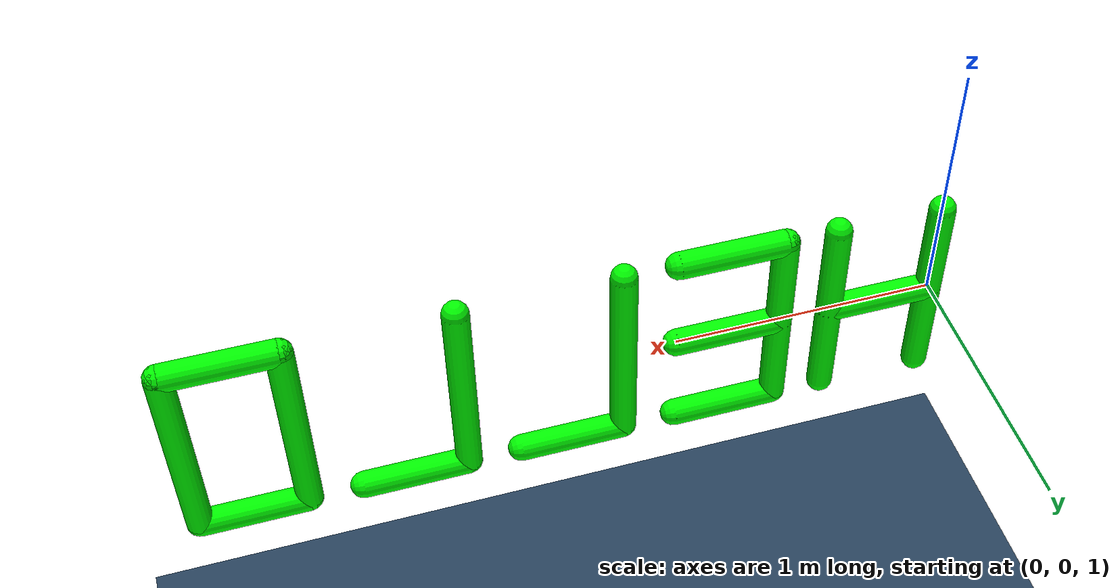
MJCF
<!-- 文档：https://zhuanlan.zhihu.com/p/696094248 -->
<!-- MuJoCo 根元素：定义模型名为 "hello" -->
<mujoco model="hello">
    <!-- 资源区：材质、纹理等可复用资源 -->
    <asset>
        <!-- 绿色材质：RGBA(0,1,0,1) 即纯绿不透明 -->
        <material name="green" rgba="0 1 0 1" />
        <!-- 棋盘格纹理：2D 内置 checker，512x512，两色 rgb1/rgb2 -->
        <texture name="grid" type="2d" builtin="checker" width="512" height="512" rgb1=".1 .2 .3" rgb2=".2 .3 .4" />
        <!-- 使用上述纹理的材质：平铺 1x1，均匀缩放，反射率 0.2 -->
        <material name="grid" texture="grid" texrepeat="1 1" texuniform="true" reflectance=".2" />
    </asset>

    <!-- 【公用区】默认值区：定义可复用的几何/关节等默认类 -->
    <default>
        <!-- 胶囊类 capsule1：半径 0.05、半长 0.4，欧拉角 0,0,0（竖直），绿色 -->
        <default class="capsule1">
            <geom type="capsule" size=".05 .4" euler="0 0 0" material="green" />
        </default>
        <!-- 胶囊类 capsule2：半径 0.05、半长 0.2，绕 Y 转 90°（水平），绿色 -->
        <default class="capsule2">
            <geom type="capsule" size=".05 .2" euler="0 90 0" material="green" />
        </default>
    </default>

    <!-- 世界体：场景中的固定与可动物体 -->
    <worldbody>
        <!-- 环境光：漫反射 RGB，位置，方向 -->
        <light diffuse="0.3 0.3 0.3" pos="1 0 3" dir="-1 0 -3" />
        <!-- 地面：无限平面，尺寸 10x10x0.1，使用棋盘格材质 -->
        <geom type="plane" size="10 10 0.1"  material="grid" />

        <!-- 字母 H：位置 (0,0,1)，欧拉角 0 -->
        <body name="H" pos="0 0 1" euler="0 0 0">
            <joint type="free"/>
            <!-- 左竖 | -->
            <geom class="capsule1" pos="0.0 0 0" />
            <!-- 横杠 - -->
            <geom class="capsule2" pos="0.2 0 0" />
            <!-- 右竖 | -->
            <geom class="capsule1" pos="0.4 0 0" />
        </body>

        <!-- 字母 E：位置 (0.6,0,1) -->
        <body name="E" pos="0.6 0 1" euler="0 0 0">
            <joint type="free"/>
            <!-- 左竖 | -->
            <geom class="capsule1" pos="0 0 0" />
            <!-- 上横 - -->
            <geom class="capsule2" pos="0.2 0 0.4" />
            <!-- 中横 - -->
            <geom class="capsule2" pos="0.2 0 0" />
            <!-- 下横 - -->
            <geom class="capsule2" pos="0.2 0 -0.4" />
        </body>

        <!-- 字母 L（第一个）：位置 (1.2,0,1) -->
        <body name="L1" pos="1.2 0 1" euler="0 0 0">
            <joint type="free"/>
            <geom class="capsule1" pos="0 0 0" />
            <!-- 下横 - -->
            <geom class="capsule2" pos="0.2 0 -0.4" />
        </body>

        <!-- 字母 L（第二个）：位置 (1.8,0,1) -->
        <body name="L2" pos="1.8 0 1" euler="0 0 0">
            <joint type="free"/>
            <geom class="capsule1" pos="0 0 0" />
            <!-- 下横 - -->
            <geom class="capsule2" pos="0.2 0 -0.4" />
        </body>

        <!-- 字母 O：位置 (2.4,0,1)，由竖横竖横组成矩形框 -->
        <body name="O" pos="2.4 0 1" euler="0 0 0">
            <joint type="free"/>
            <!-- 左竖 | -->
            <geom class="capsule1" pos="0 0 0" />
            <!-- 下横 - -->
            <geom class="capsule2" pos="0.2 0 -0.4" />
            <!-- 上横 - -->
            <geom class="capsule2" pos="0.2 0 0.4" />
            <!-- 右竖 | -->
            <geom class="capsule1" pos="0.4 0 0" />
        </body>

    </worldbody>
</mujoco>
